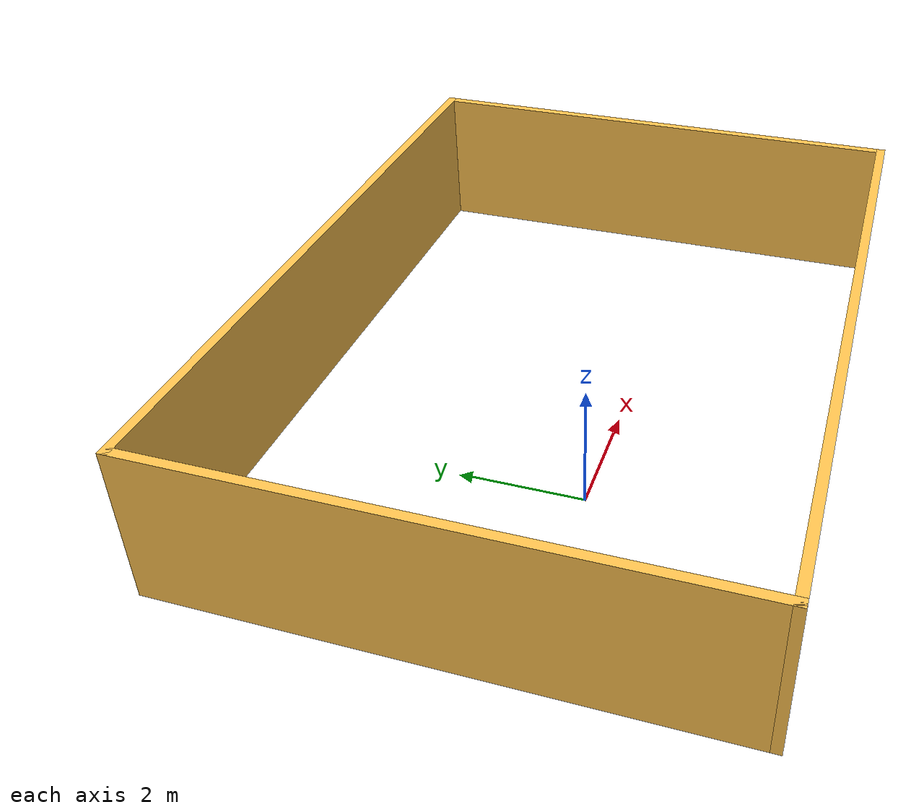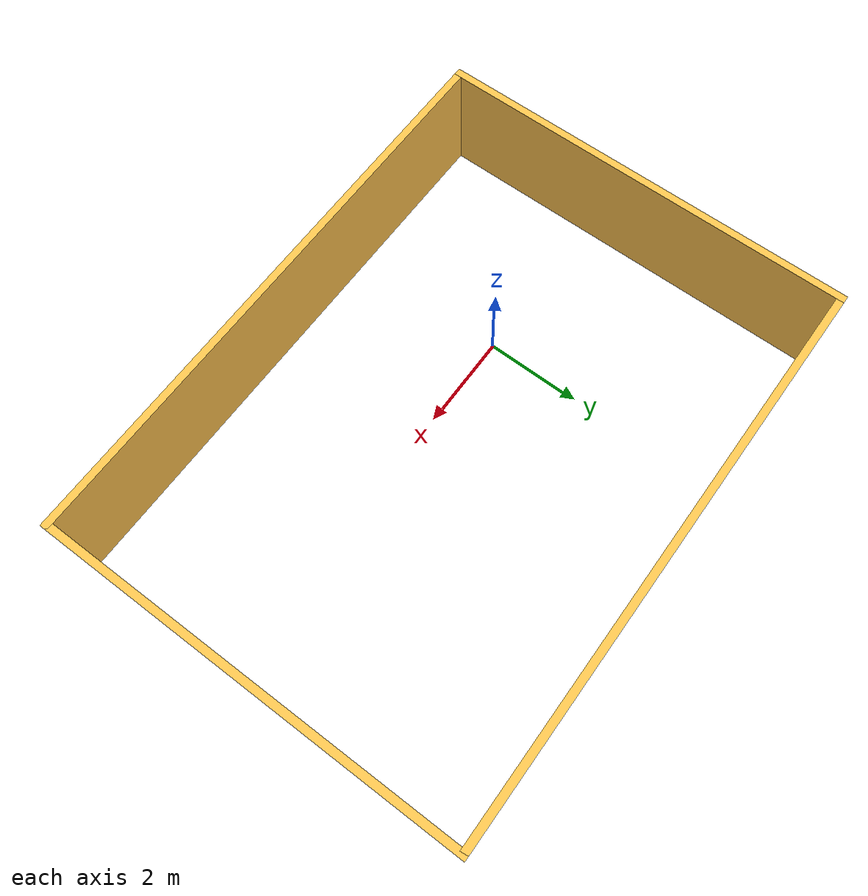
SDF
<?xml version='1.0'?>
<sdf version='1.7'>
  <model name='aius3011'>
    <pose>2.315 0.915 0 0 -0 0</pose>
    <link name='Wall_0'>
      <collision name='Wall_0_Collision'>
        <geometry>
          <box>
            <size>11.7 0.15 2.5</size>
          </box>
        </geometry>
        <pose>0 0 1.25 0 -0 0</pose>
      </collision>
      <visual name='Wall_0_Visual'>
        <pose>0 0 1.25 0 -0 0</pose>
        <geometry>
          <box>
            <size>11.7 0.15 2.5</size>
          </box>
        </geometry>
        <material>
          <script>
            <uri>file://media/materials/scripts/gazebo.material</uri>
            <name>Gazebo/Grey</name>
          </script>
          <ambient>1 0.764706 0.305882 1</ambient>
        </material>
        <meta>
          <layer>0</layer>
        </meta>
      </visual>
      <pose>-0 -4.275 0 0 -0 0</pose>
    </link>
    <link name='Wall_2'>
      <collision name='Wall_2_Collision'>
        <geometry>
          <box>
            <size>8.7 0.15 2.5</size>
          </box>
        </geometry>
        <pose>0 0 1.25 0 -0 0</pose>
      </collision>
      <visual name='Wall_2_Visual'>
        <pose>0 0 1.25 0 -0 0</pose>
        <geometry>
          <box>
            <size>8.7 0.15 2.5</size>
          </box>
        </geometry>
        <material>
          <script>
            <uri>file://media/materials/scripts/gazebo.material</uri>
            <name>Gazebo/Grey</name>
          </script>
          <ambient>1 0.764706 0.305882 1</ambient>
        </material>
        <meta>
          <layer>0</layer>
        </meta>
      </visual>
      <pose>-5.775 0 0 0 -0 1.5708</pose>
    </link>
    <link name='Wall_4'>
      <collision name='Wall_4_Collision'>
        <geometry>
          <box>
            <size>11.7 0.15 2.5</size>
          </box>
        </geometry>
        <pose>0 0 1.25 0 -0 0</pose>
      </collision>
      <visual name='Wall_4_Visual'>
        <pose>0 0 1.25 0 -0 0</pose>
        <geometry>
          <box>
            <size>11.7 0.15 2.5</size>
          </box>
        </geometry>
        <material>
          <script>
            <uri>file://media/materials/scripts/gazebo.material</uri>
            <name>Gazebo/Grey</name>
          </script>
          <ambient>1 0.764706 0.305882 1</ambient>
        </material>
        <meta>
          <layer>0</layer>
        </meta>
      </visual>
      <pose>-0 4.275 0 0 -0 0</pose>
    </link>
    <link name='Wall_6'>
      <collision name='Wall_6_Collision'>
        <geometry>
          <box>
            <size>8.7 0.15 2.5</size>
          </box>
        </geometry>
        <pose>0 0 1.25 0 -0 0</pose>
      </collision>
      <visual name='Wall_6_Visual'>
        <pose>0 0 1.25 0 -0 0</pose>
        <geometry>
          <box>
            <size>8.7 0.15 2.5</size>
          </box>
        </geometry>
        <material>
          <script>
            <uri>file://media/materials/scripts/gazebo.material</uri>
            <name>Gazebo/Grey</name>
          </script>
          <ambient>1 0.764706 0.305882 1</ambient>
        </material>
        <meta>
          <layer>0</layer>
        </meta>
      </visual>
      <pose>5.775 0 0 0 -0 -1.5708</pose>
    </link>
    <static>1</static>
  </model>
</sdf>
